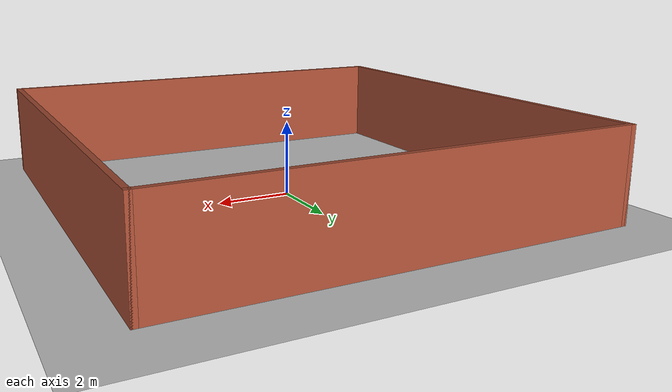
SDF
<?xml version="1.0" ?>
<sdf version="1.6">
  <world name="static_world">
    <physics name="1ms" type="ignored">
      <max_step_size>0.001</max_step_size>
      <real_time_factor>1.0</real_time_factor>
    </physics>

    <plugin filename="gz-sim-contact-system" name="gz::sim::systems::Contact" />
    <plugin filename="gz-sim-imu-system" name="gz::sim::systems::Imu" />
    <plugin filename="gz-sim-physics-system" name="gz::sim::systems::Physics" />
    <plugin filename="gz-sim-scene-broadcaster-system" name="gz::sim::systems::SceneBroadcaster" />
    <plugin filename="gz-sim-sensors-system" name="gz::sim::systems::Sensors" />
    <plugin filename="gz-sim-user-commands-system" name="gz::sim::systems::UserCommands" />

    <spherical_coordinates>
      <surface_model>EARTH_WGS84</surface_model>
      <world_frame_orientation>ENU</world_frame_orientation>
      <latitude_deg>50.088384</latitude_deg>
      <longitude_deg>19.939128</longitude_deg>
      <elevation>0</elevation>
      <heading_deg>0</heading_deg>
    </spherical_coordinates>

    <light type="directional" name="sun">
      <cast_shadows>true</cast_shadows>
      <pose>0 0 10 0 0 0</pose>
      <diffuse>0.8 0.8 0.8 1</diffuse>
      <specular>0.2 0.2 0.2 1</specular>
      <attenuation>
        <range>1000</range>
        <constant>0.9</constant>
        <linear>0.01</linear>
        <quadratic>0.001</quadratic>
      </attenuation>
      <direction>-0.5 0.1 -0.9</direction>
    </light>

    <model name="ground_plane">
      <static>true</static>
      <link name="link">
        <collision name="collision">
          <geometry>
            <plane>
              <normal>0 0 1</normal>
              <size>100 100</size>
            </plane>
          </geometry>
        </collision>
        <visual name="visual">
          <geometry>
            <plane>
              <normal>0 0 1</normal>
              <size>100 100</size>
            </plane>
          </geometry>
          <material>
            <ambient>0.8 0.8 0.8 1</ambient>
            <diffuse>0.8 0.8 0.8 1</diffuse>
            <specular>0.8 0.8 0.8 1</specular>
          </material>
        </visual>
      </link>
    </model>

    <model name="td7_world">
      <static>1</static>
      <include>
        <uri>model://td7_world</uri>
      </include>
    </model>

  </world>
</sdf>

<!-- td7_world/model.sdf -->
<sdf version="1.7">
  <model name="td7_world">
    <pose>0 0 0 0 -0 0</pose>

    <!-- Top Wall -->
    <link name="Wall_0">
      <collision name="Wall_0_Collision">
        <geometry>
          <box>
            <size>12.15 0.15 2.5</size>
          </box>
        </geometry>
        <pose>0 0 1.25 0 -0 0</pose>
      </collision>
      <visual name="Wall_0_Visual">
        <pose>0 0 1.25 0 -0 0</pose>
        <geometry>
          <box>
            <size>12.15 0.15 2.5</size>
          </box>
        </geometry>
        <material>
          <script>
            <uri>file://media/materials/scripts/gazebo.material</uri>
            <name>Gazebo/Bricks</name>
          </script>
          <ambient>1 1 1 1</ambient>
        </material>
        <meta>
          <layer>0</layer>
        </meta>
      </visual>
      <pose>0 6 0 0 -0 0</pose>
    </link>

    <!-- Right Wall -->
    <link name="Wall_1">
      <collision name="Wall_1_Collision">
        <geometry>
          <box>
            <size>12.15 0.15 2.5</size>
          </box>
        </geometry>
        <pose>0 0 1.25 0 -0 0</pose>
      </collision>
      <visual name="Wall_1_Visual">
        <pose>0 0 1.25 0 -0 0</pose>
        <geometry>
          <box>
            <size>12.15 0.15 2.5</size>
          </box>
        </geometry>
        <material>
          <script>
            <uri>file://media/materials/scripts/gazebo.material</uri>
            <name>Gazebo/Bricks</name>
          </script>
          <ambient>1 1 1 1</ambient>
        </material>
        <meta>
          <layer>0</layer>
        </meta>
      </visual>
      <pose>6 0 0 0 -0 -1.5708</pose>
    </link>

    <!-- Bottom Wall -->
    <link name="Wall_2">
      <collision name="Wall_2_Collision">
        <geometry>
          <box>
            <size>12.15 0.15 2.5</size>
          </box>
        </geometry>
        <pose>0 0 1.25 0 -0 0</pose>
      </collision>
      <visual name="Wall_2_Visual">
        <pose>0 0 1.25 0 -0 0</pose>
        <geometry>
          <box>
            <size>12.15 0.15 2.5</size>
          </box>
        </geometry>
        <material>
          <script>
            <uri>file://media/materials/scripts/gazebo.material</uri>
            <name>Gazebo/Bricks</name>
          </script>
          <ambient>1 1 1 1</ambient>
        </material>
        <meta>
          <layer>0</layer>
        </meta>
      </visual>
      <pose>0 -6 0 0 -0 3.14159</pose>
    </link>

    <!-- Left Wall -->
    <link name="Wall_3">
      <collision name="Wall_3_Collision">
        <geometry>
          <box>
            <size>12.15 0.15 2.5</size>
          </box>
        </geometry>
        <pose>0 0 1.25 0 -0 0</pose>
      </collision>
      <visual name="Wall_3_Visual">
        <pose>0 0 1.25 0 -0 0</pose>
        <geometry>
          <box>
            <size>12.15 0.15 2.5</size>
          </box>
        </geometry>
        <material>
          <script>
            <uri>file://media/materials/scripts/gazebo.material</uri>
            <name>Gazebo/Bricks</name>
          </script>
          <ambient>1 1 1 1</ambient>
        </material>
        <meta>
          <layer>0</layer>
        </meta>
      </visual>
      <pose>-6 0 0 0 -0 1.5708</pose>
    </link>

    <static>1</static>
  </model>
</sdf>
